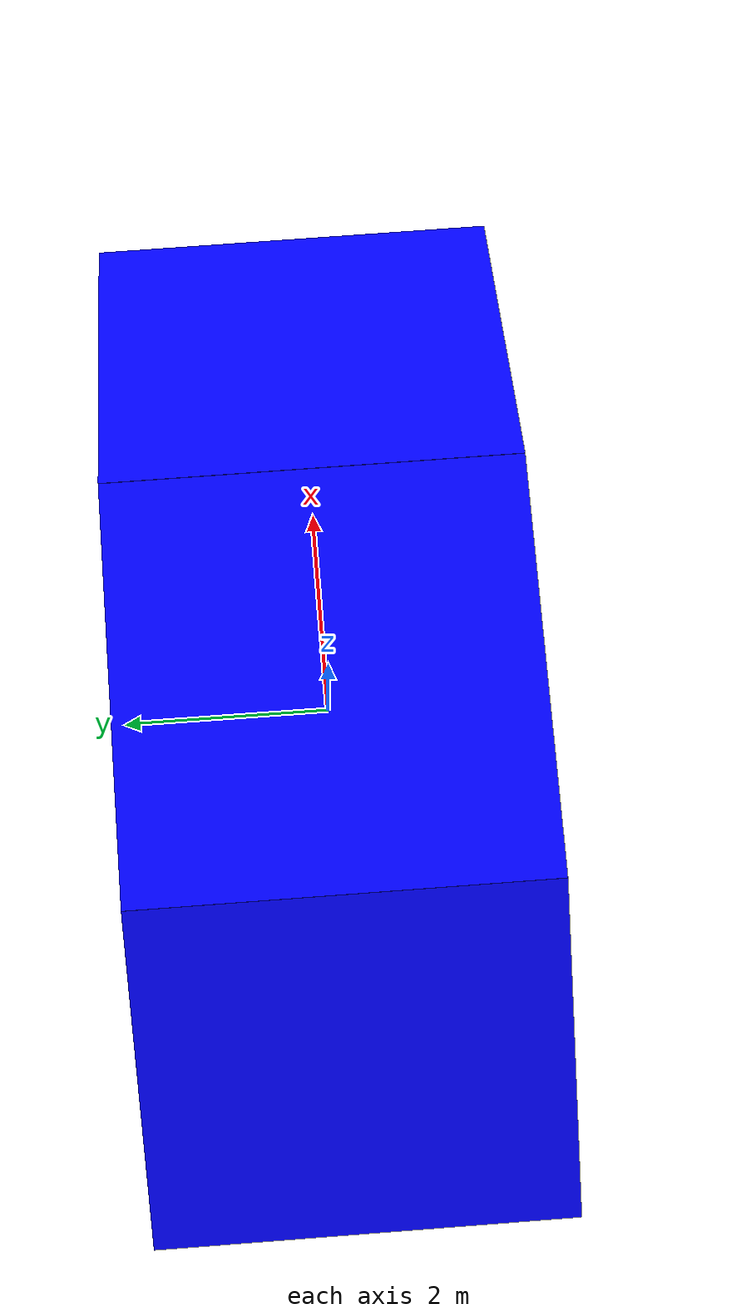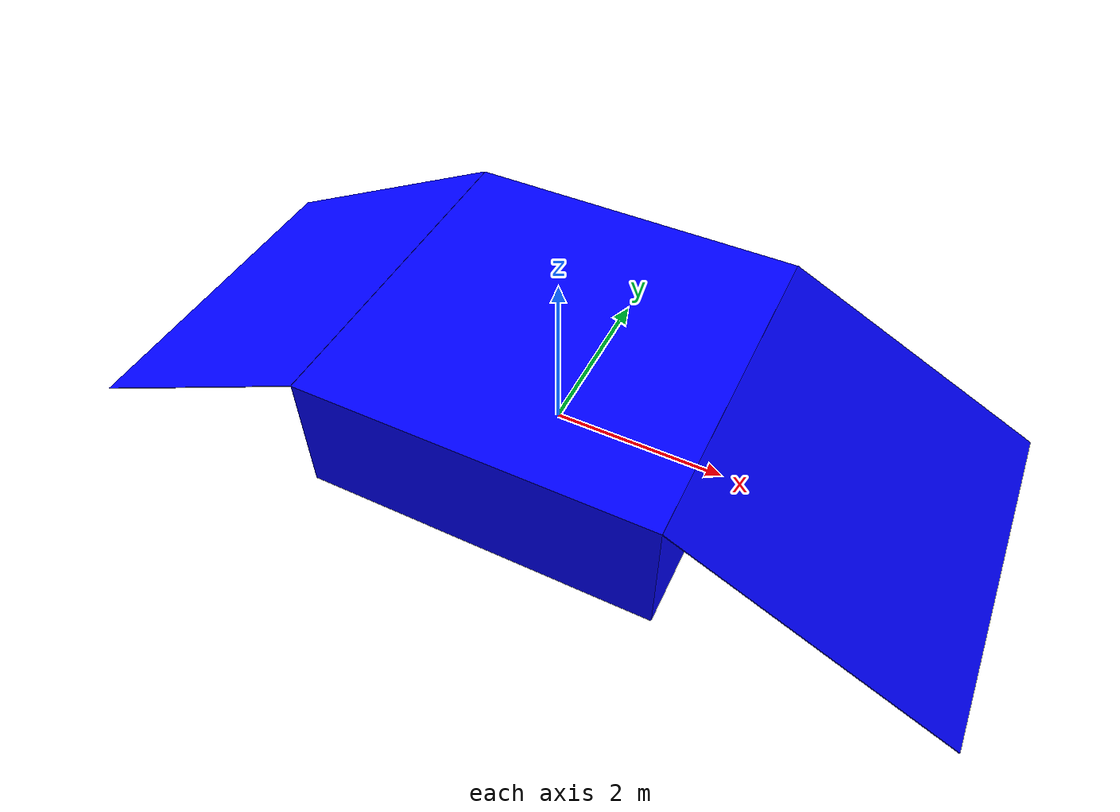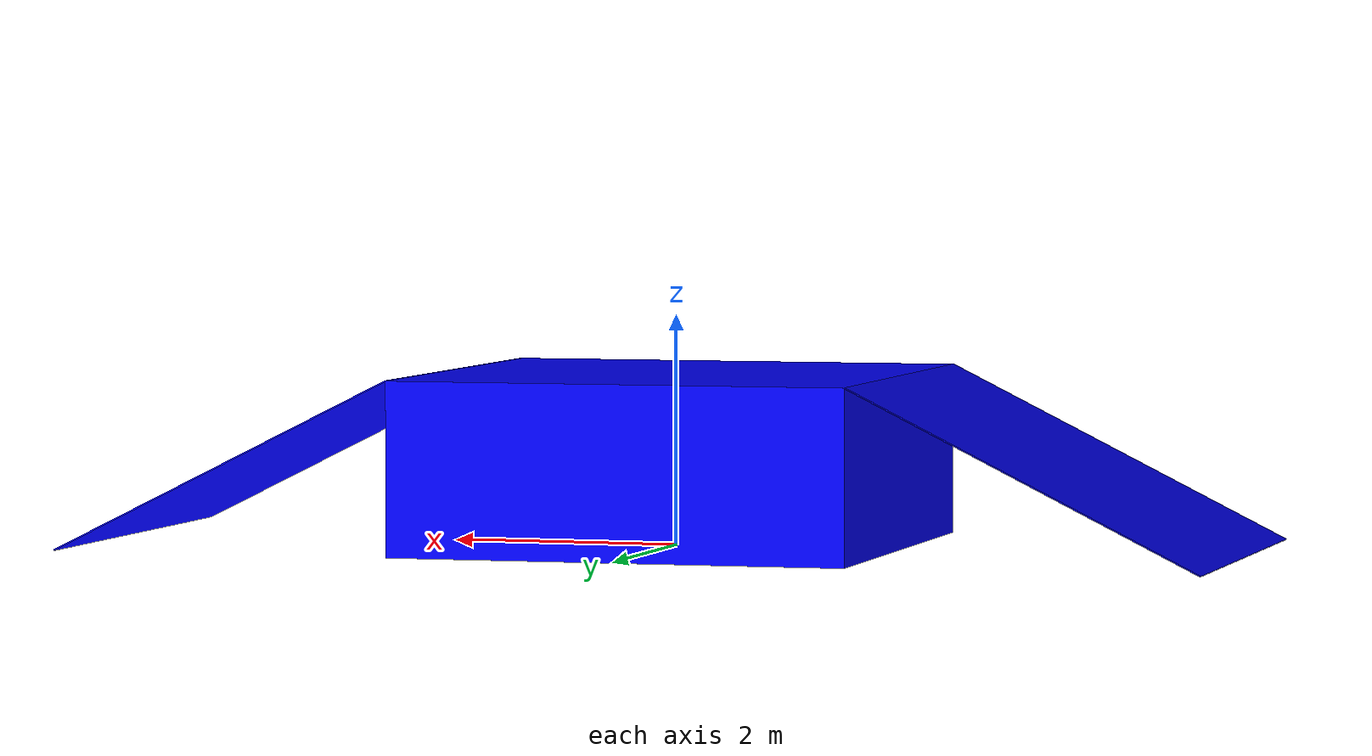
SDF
<sdf version="1.6">
  <model name="ramp">
    <link name="base_link">
      <pose frame="">0 0 0 0 -0 0</pose>
      <inertial>
        <pose frame="">0 0 0.75 0 -0 0</pose>
        <mass>150</mass>
        <inertia>
          <ixx>0</ixx>
          <ixy>0</ixy>
          <ixz>0</ixz>
          <iyy>1225</iyy>
          <iyz>0</iyz>
          <izz>1225</izz>
        </inertia>
      </inertial>
      <collision name="base_link_collision">
        <pose frame="">0 0 0.75 0 -0 0</pose>
        <geometry>
          <box>
            <size>4 4 1.5</size>
          </box>
        </geometry>
      </collision>
      <collision name="base_link_fixed_joint_lump__childA_collision_1">
        <pose frame="">3.5 0 0.75 0 0.463 0</pose>
        <geometry>
          <box>
            <size>3.3541 4 0.01</size>
          </box>
        </geometry>
      </collision>
      <collision name="base_link_fixed_joint_lump__childB_collision_2">
        <pose frame="">-3.5 0 0.75 0 -0.463 0</pose>
        <geometry>
          <box>
            <size>3.3541 4 0.01</size>
          </box>
        </geometry>
      </collision>
      <visual name="base_link_visual">
        <pose frame="">0 0 0.75 0 -0 0</pose>
        <geometry>
          <box>
            <size>4 4 1.5</size>
          </box>
        </geometry>
        <material>
          <ambient>0 0 1 1</ambient>
          <diffuse>0 0 1 1</diffuse>
          <specular>0.1 0.1 0.1 1</specular>
          <emissive>0 0 0 1</emissive>
        </material>
      </visual>
      <visual name="base_link_fixed_joint_lump__childA_visual_1">
        <pose frame="">3.5 0 0.75 0 0.463 0</pose>
        <geometry>
          <box>
            <size>3.3541 4 0.01</size>
          </box>
        </geometry>
        <material>
          <ambient>0 0 1 1</ambient>
          <diffuse>0 0 1 1</diffuse>
          <specular>0.1 0.1 0.1 1</specular>
          <emissive>0 0 0 1</emissive>
        </material>
      </visual>
      <visual name="base_link_fixed_joint_lump__childB_visual_2">
        <pose frame="">-3.5 0 0.75 0 -0.463 0</pose>
        <geometry>
          <box>
            <size>3.3541 4 0.01</size>
          </box>
        </geometry>
        <material>
          <ambient>0 0 1 1</ambient>
          <diffuse>0 0 1 1</diffuse>
          <specular>0.1 0.1 0.1 1</specular>
          <emissive>0 0 0 1</emissive>
        </material>
      </visual>
    </link>
    <joint name="fixed" type="fixed">
      <child>base_link</child>
      <parent>world</parent>
    </joint>
  </model>
</sdf>
